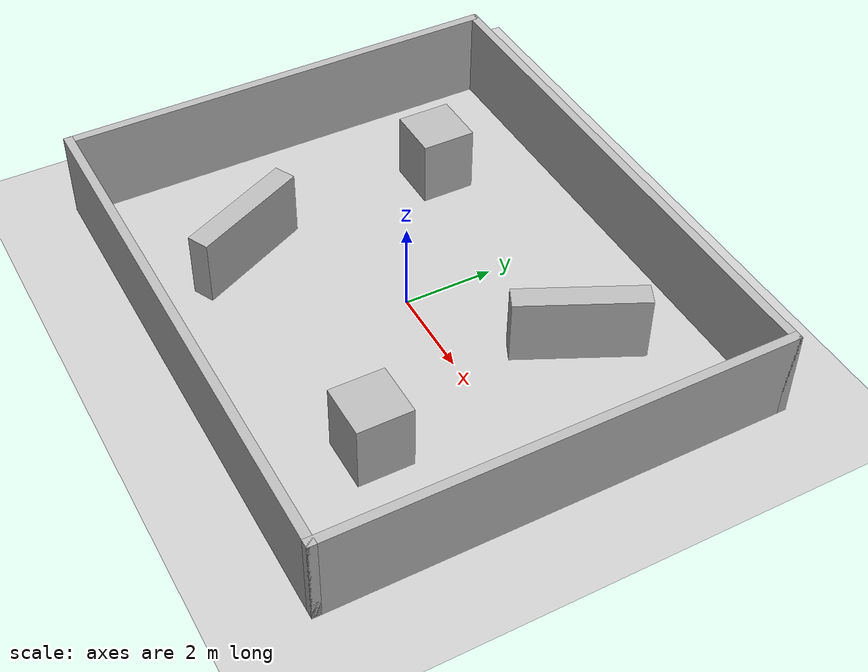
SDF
<sdf version='1.7'>
  <world name='p1c_open'>
    <plugin name='gazebo_ros_state' filename='libgazebo_ros_state.so'>
      <ros><namespace>/gazebo</namespace></ros>
      <update_rate>10.0</update_rate>
    </plugin>
    <include><uri>model://sun</uri></include>
    <include><uri>model://ground_plane</uri></include>
    <gravity>0 0 -9.8</gravity>
    <physics type='ode'>
      <max_step_size>0.001</max_step_size>
      <real_time_factor>1</real_time_factor>
      <real_time_update_rate>1000</real_time_update_rate>
      <ode>
        <solver>
          <type>quick</type>
          <iters>150</iters>
        </solver>
      </ode>
    </physics>
    <model name='open_walls'>
      <static>true</static>
      <link name='walls'>
        <collision name='north'><pose>0 5 1 0 0 0</pose><geometry><box><size>12.2 0.2 2</size></box></geometry></collision>
        <visual name='north_visual'><pose>0 5 1 0 0 0</pose><geometry><box><size>12.2 0.2 2</size></box></geometry></visual>
        <collision name='south'><pose>0 -5 1 0 0 0</pose><geometry><box><size>12.2 0.2 2</size></box></geometry></collision>
        <visual name='south_visual'><pose>0 -5 1 0 0 0</pose><geometry><box><size>12.2 0.2 2</size></box></geometry></visual>
        <collision name='east'><pose>6 0 1 0 0 0</pose><geometry><box><size>0.2 10.2 2</size></box></geometry></collision>
        <visual name='east_visual'><pose>6 0 1 0 0 0</pose><geometry><box><size>0.2 10.2 2</size></box></geometry></visual>
        <collision name='west'><pose>-6 0 1 0 0 0</pose><geometry><box><size>0.2 10.2 2</size></box></geometry></collision>
        <visual name='west_visual'><pose>-6 0 1 0 0 0</pose><geometry><box><size>0.2 10.2 2</size></box></geometry></visual>
      </link>
    </model>
    <model name='open_obstacles'>
      <static>true</static>
      <link name='obstacles'>
        <collision name='box_nw'><pose>-3.3 2.5 0.75 0 0 0</pose><geometry><box><size>1.2 1.2 1.5</size></box></geometry></collision>
        <visual name='box_nw_visual'><pose>-3.3 2.5 0.75 0 0 0</pose><geometry><box><size>1.2 1.2 1.5</size></box></geometry></visual>
        <collision name='box_se'><pose>3.3 -2.5 0.75 0 0 0</pose><geometry><box><size>1.2 1.2 1.5</size></box></geometry></collision>
        <visual name='box_se_visual'><pose>3.3 -2.5 0.75 0 0 0</pose><geometry><box><size>1.2 1.2 1.5</size></box></geometry></visual>
        <collision name='bar_sw'><pose>-2.8 -2.4 0.75 0 0 0.45</pose><geometry><box><size>0.5 2.8 1.5</size></box></geometry></collision>
        <visual name='bar_sw_visual'><pose>-2.8 -2.4 0.75 0 0 0.45</pose><geometry><box><size>0.5 2.8 1.5</size></box></geometry></visual>
        <collision name='bar_ne'><pose>2.8 2.4 0.75 0 0 -0.45</pose><geometry><box><size>0.5 2.8 1.5</size></box></geometry></collision>
        <visual name='bar_ne_visual'><pose>2.8 2.4 0.75 0 0 -0.45</pose><geometry><box><size>0.5 2.8 1.5</size></box></geometry></visual>
      </link>
    </model>
  </world>
</sdf>
